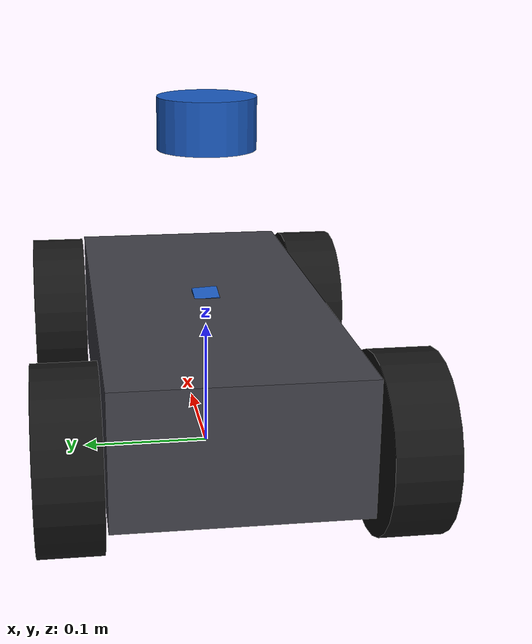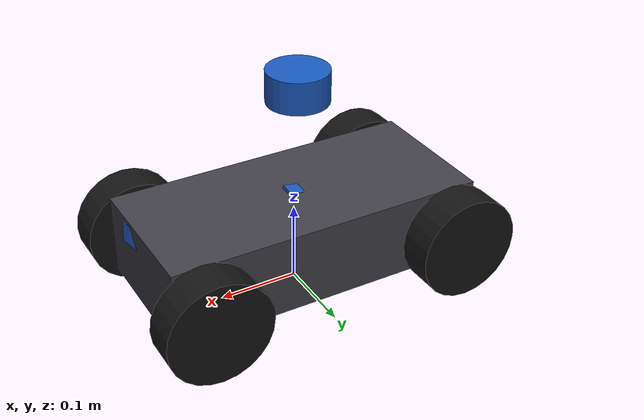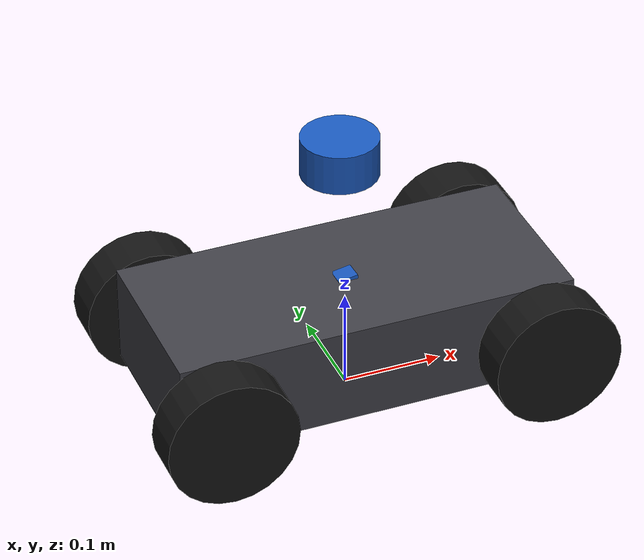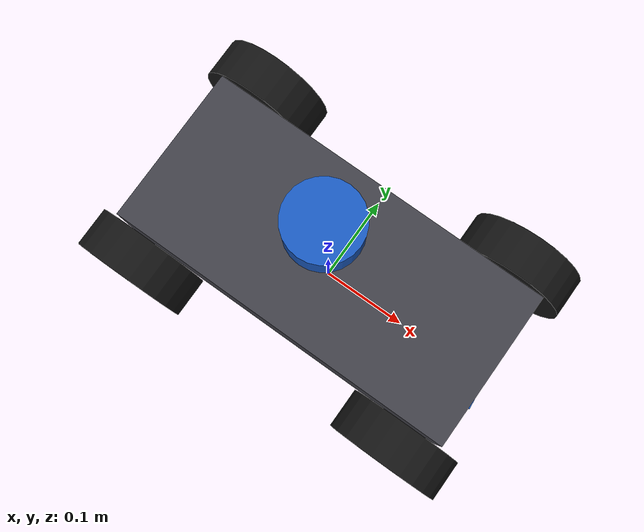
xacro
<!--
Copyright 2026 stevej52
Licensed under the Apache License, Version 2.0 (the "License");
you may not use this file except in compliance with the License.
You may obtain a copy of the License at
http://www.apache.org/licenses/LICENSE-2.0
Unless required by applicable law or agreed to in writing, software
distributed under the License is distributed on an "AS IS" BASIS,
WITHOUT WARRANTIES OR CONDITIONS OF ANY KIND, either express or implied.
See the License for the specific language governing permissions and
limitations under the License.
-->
<?xml version="1.0"?>
<robot xmlns:xacro="http://www.ros.org/wiki/xacro" name="jetnano">

  <!-- The real robot's description, unmodified. -->
  <xacro:include filename="$(find jetnano_description)/urdf/jetnano.urdf.xacro"/>

  <!-- Layer 2: lidar, RGB-D camera and IMU, with realistic noise. -->
  <xacro:include filename="$(find jetnano_gazebo)/urdf/jetnano_sensors.gazebo.xacro"/>

  <!-- Layer 3: ros2_control, eight joints, so the robot can be driven. -->
  <xacro:include filename="$(find jetnano_gazebo)/urdf/jetnano_control.gazebo.xacro"/>

  <xacro:macro name="wheel_surface" params="name">
    <gazebo reference="${name}_wheel_link">
      <mu1>1.2</mu1>
      <mu2>1.2</mu2>
      <kp>1000000.0</kp>
      <kd>100.0</kd>
      <minDepth>0.001</minDepth>
      <maxVel>0.1</maxVel>
      <material>Gazebo/Black</material>
    </gazebo>
  </xacro:macro>

  <xacro:wheel_surface name="front_left"/>
  <xacro:wheel_surface name="front_right"/>
  <xacro:wheel_surface name="rear_left"/>
  <xacro:wheel_surface name="rear_right"/>

  <gazebo reference="base_link">
    <mu1>0.2</mu1>
    <mu2>0.2</mu2>
    <material>Gazebo/Grey</material>
  </gazebo>

  <!-- The steering knuckles never touch anything; give them no contact cost. -->
  <xacro:macro name="steer_surface" params="name">
    <gazebo reference="${name}_steer_link">
      <material>Gazebo/DarkGrey</material>
    </gazebo>
  </xacro:macro>

  <xacro:steer_surface name="front_left"/>
  <xacro:steer_surface name="front_right"/>
  <xacro:steer_surface name="rear_left"/>
  <xacro:steer_surface name="rear_right"/>

  <gazebo>
    <plugin filename="gz-sim-odometry-publisher-system"
            name="gz::sim::systems::OdometryPublisher">
      <odom_frame>world</odom_frame>
      <robot_base_frame>base_footprint</robot_base_frame>
      <odom_publish_frequency>50</odom_publish_frequency>
      <odom_topic>ground_truth/odom</odom_topic>
    </plugin>
  </gazebo>

</robot>

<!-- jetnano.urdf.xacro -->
<robot name="jetnano" xmlns:xacro="http://www.ros.org/wiki/xacro">

  <xacro:property name="wheelbase"        value="0.330"/>  <!-- front axle to rear axle -->
  <xacro:property name="track_width"      value="0.230"/>  <!-- left wheel to right wheel -->
  <xacro:property name="wheel_radius"     value="0.065"/>  <!-- tyre radius, loaded -->
  <xacro:property name="wheel_width"      value="0.045"/>
  <xacro:property name="chassis_length"   value="0.400"/>
  <xacro:property name="chassis_width"    value="0.180"/>
  <xacro:property name="chassis_height"   value="0.100"/>
  <xacro:property name="chassis_z_offset" value="0.010"/>  <!-- chassis centre above axle line -->
  <xacro:property name="steer_limit"      value="0.5236"/> <!-- 30 degrees -->

  <xacro:property name="lidar_xyz"  value="-0.005 0.0 0.198"/>
  <xacro:property name="lidar_rpy"  value="0 0 ${pi}"/>
  <xacro:property name="camera_xyz" value="0.185 0.0 0.044"/>
  <xacro:property name="camera_rpy" value="-3.086 -0.085 0.122"/>
  <xacro:property name="imu_xyz"    value="0.0 0.0 0.060"/>
  <xacro:property name="imu_rpy"    value="2.9698 0.0552 1.5680"/>

  <!-- Rough masses. Good enough for TF and RViz; revisit only if you ever
       simulate the robot dynamically. -->
  <xacro:property name="chassis_mass" value="2.500"/>
  <xacro:property name="wheel_mass"   value="0.250"/>
  <xacro:property name="steer_mass"   value="0.050"/>

  <material name="chassis_grey"><color rgba="0.25 0.25 0.28 1.0"/></material>
  <material name="tyre_black">  <color rgba="0.08 0.08 0.08 1.0"/></material>
  <material name="sensor_blue"> <color rgba="0.10 0.35 0.75 1.0"/></material>
  <material name="hub_red">     <color rgba="0.65 0.15 0.15 1.0"/></material>

  <!-- Inertia helpers. A solid box and a cylinder rotated to spin about Y. -->
  <xacro:macro name="box_inertia" params="m x y z">
    <inertial>
      <mass value="${m}"/>
      <inertia ixx="${m*(y*y+z*z)/12.0}" iyy="${m*(x*x+z*z)/12.0}" izz="${m*(x*x+y*y)/12.0}"
               ixy="0" ixz="0" iyz="0"/>
    </inertial>
  </xacro:macro>

  <xacro:macro name="wheel_inertia" params="m r w">
    <inertial>
      <origin xyz="0 0 0" rpy="${pi/2} 0 0"/>
      <mass value="${m}"/>
      <inertia ixx="${m*(3*r*r+w*w)/12.0}" iyy="${m*(3*r*r+w*w)/12.0}" izz="${m*r*r/2.0}"
               ixy="0" ixz="0" iyz="0"/>
    </inertial>
  </xacro:macro>

  <link name="base_footprint"/>

  <joint name="base_footprint_to_base_link" type="fixed">
    <parent link="base_footprint"/>
    <child  link="base_link"/>
    <origin xyz="0 0 ${wheel_radius}" rpy="0 0 0"/>
  </joint>

  <link name="base_link">
    <visual>
      <origin xyz="0 0 ${chassis_z_offset}" rpy="0 0 0"/>
      <geometry><box size="${chassis_length} ${chassis_width} ${chassis_height}"/></geometry>
      <material name="chassis_grey"/>
    </visual>
    <collision>
      <origin xyz="0 0 ${chassis_z_offset}" rpy="0 0 0"/>
      <geometry><box size="${chassis_length} ${chassis_width} ${chassis_height}"/></geometry>
    </collision>
    <xacro:box_inertia m="${chassis_mass}" x="${chassis_length}" y="${chassis_width}" z="${chassis_height}"/>
  </link>

  <xacro:macro name="corner" params="name x y">

    <link name="${name}_steer_link">
      <visual>
        <geometry><cylinder radius="0.018" length="0.040"/></geometry>
        <material name="hub_red"/>
      </visual>
      <xacro:box_inertia m="${steer_mass}" x="0.036" y="0.036" z="0.040"/>
    </link>

    <joint name="${name}_steer_joint" type="revolute">
      <parent link="base_link"/>
      <child  link="${name}_steer_link"/>
      <origin xyz="${x} ${y} 0" rpy="0 0 0"/>
      <axis xyz="0 0 1"/>
      <limit lower="${-steer_limit}" upper="${steer_limit}" effort="8.0" velocity="4.0"/>
    </joint>

    <link name="${name}_wheel_link">
      <visual>
        <origin xyz="0 0 0" rpy="${pi/2} 0 0"/>
        <geometry><cylinder radius="${wheel_radius}" length="${wheel_width}"/></geometry>
        <material name="tyre_black"/>
      </visual>
      <collision>
        <origin xyz="0 0 0" rpy="${pi/2} 0 0"/>
        <geometry><cylinder radius="${wheel_radius}" length="${wheel_width}"/></geometry>
      </collision>
      <xacro:wheel_inertia m="${wheel_mass}" r="${wheel_radius}" w="${wheel_width}"/>
    </link>

    <joint name="${name}_wheel_joint" type="continuous">
      <parent link="${name}_steer_link"/>
      <child  link="${name}_wheel_link"/>
      <origin xyz="0 0 0" rpy="0 0 0"/>
      <axis xyz="0 1 0"/>
    </joint>

  </xacro:macro>

  <xacro:corner name="front_left"  x="${ wheelbase/2}" y="${ track_width/2}"/>
  <xacro:corner name="front_right" x="${ wheelbase/2}" y="${-track_width/2}"/>
  <xacro:corner name="rear_left"   x="${-wheelbase/2}" y="${ track_width/2}"/>
  <xacro:corner name="rear_right"  x="${-wheelbase/2}" y="${-track_width/2}"/>

  <link name="lidar_link">
    <visual>
      <geometry><cylinder radius="0.038" length="0.040"/></geometry>
      <material name="sensor_blue"/>
    </visual>
    <xacro:box_inertia m="0.170" x="0.076" y="0.076" z="0.040"/>
  </link>
  <joint name="lidar_joint" type="fixed">
    <parent link="base_link"/>
    <child  link="lidar_link"/>
    <origin xyz="${lidar_xyz}" rpy="${lidar_rpy}"/>
  </joint>

  <link name="camera_link">
    <visual>
      <geometry><box size="0.025 0.090 0.025"/></geometry>
      <material name="sensor_blue"/>
    </visual>
    <xacro:box_inertia m="0.072" x="0.025" y="0.090" z="0.025"/>
  </link>
  <joint name="camera_joint" type="fixed">
    <parent link="base_link"/>
    <child  link="camera_link"/>
    <origin xyz="${camera_xyz}" rpy="${camera_rpy}"/>
  </joint>

  <link name="imu_link">
    <visual>
      <geometry><box size="0.020 0.020 0.004"/></geometry>
      <material name="sensor_blue"/>
    </visual>
    <xacro:box_inertia m="0.005" x="0.020" y="0.020" z="0.004"/>
  </link>
  <joint name="imu_joint" type="fixed">
    <parent link="base_link"/>
    <child  link="imu_link"/>
    <origin xyz="${imu_xyz}" rpy="${imu_rpy}"/>
  </joint>

</robot>
